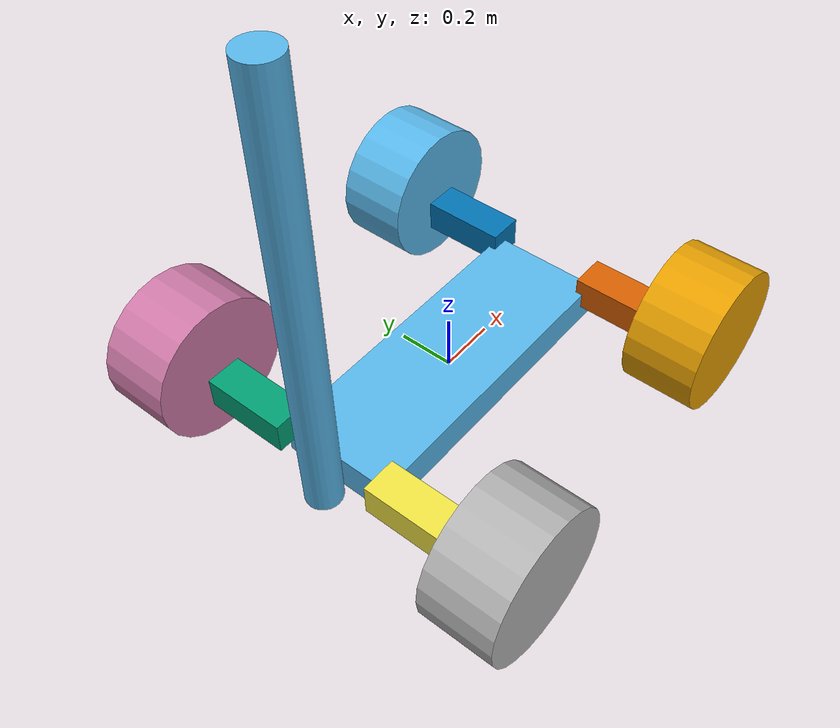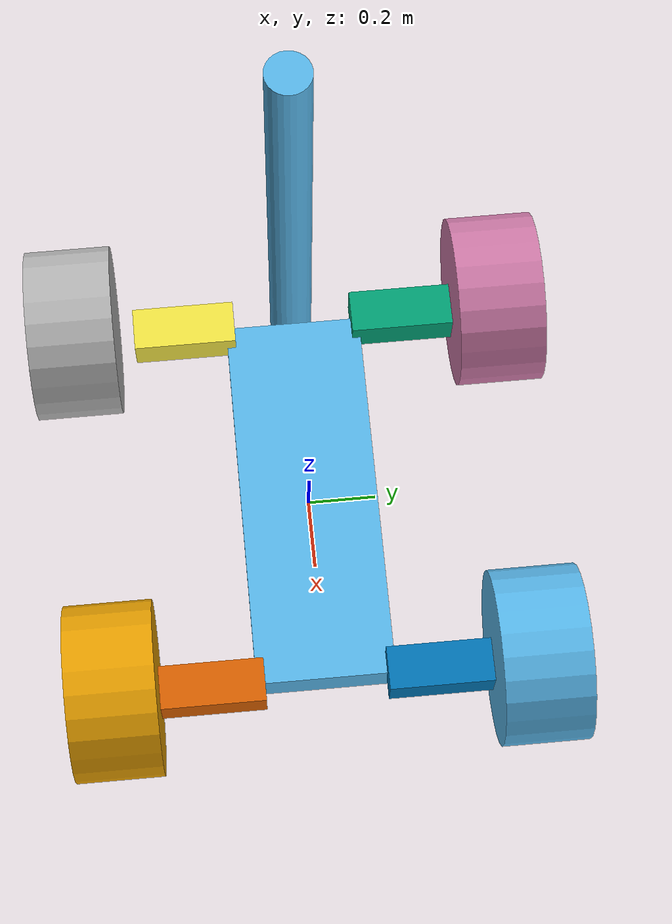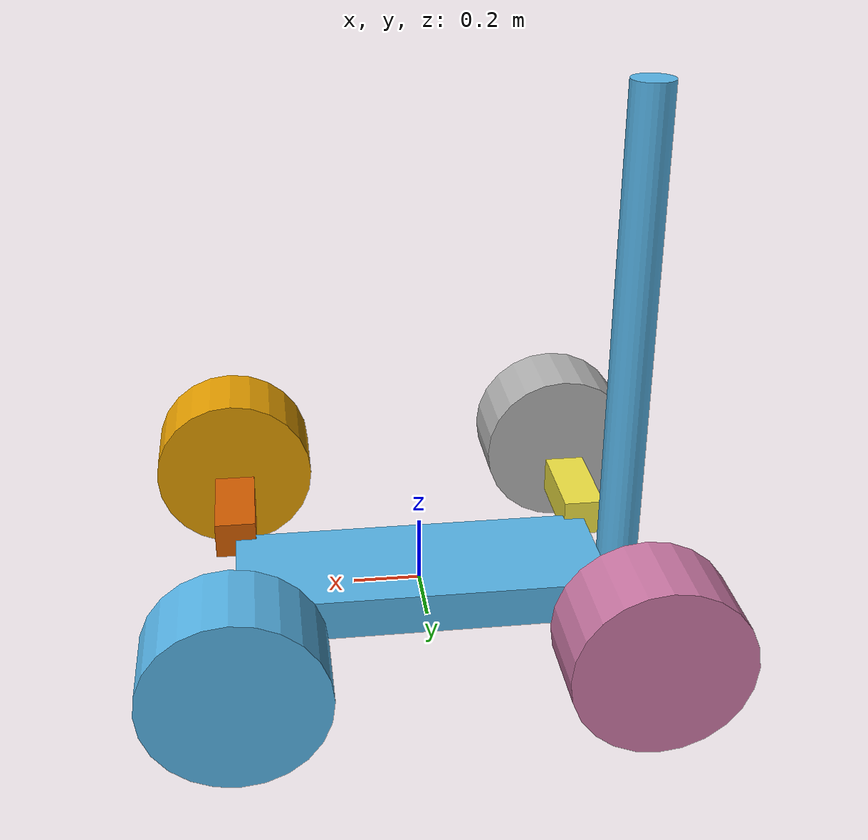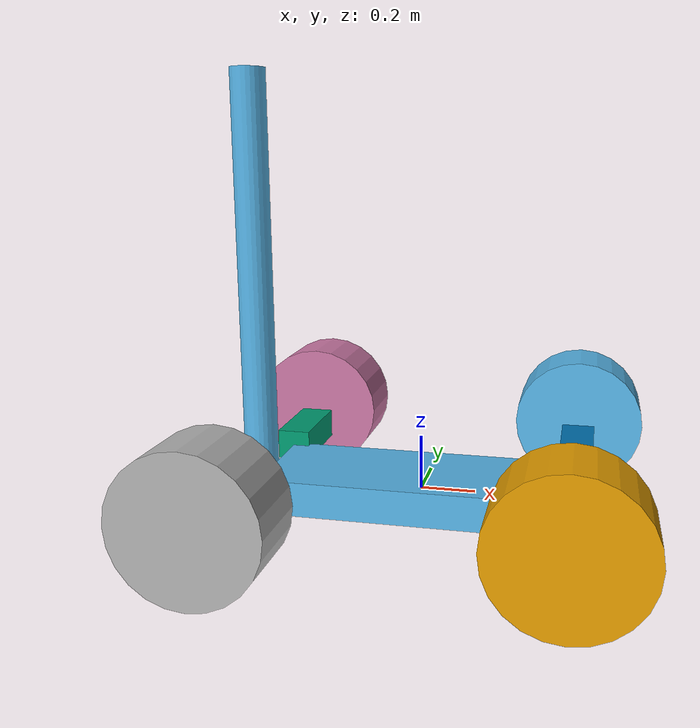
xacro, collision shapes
<?xml version='1.0'?>

<!-- choose a name space and start xacro -->
<robot name="common_models" xmlns:xacro="http://www.ros.org/wiki/xacro">

  <!-- Start by including all required xacro files which hold the macros -->
  <xacro:include filename="$(find sim_world)/models/common_models/common_models.gazebo" />
  <xacro:include filename="$(find sim_world)/models/common_models/materials.xacro" />
  <xacro:include filename="$(find sim_world)/models/common_models/macros.xacro"    />
  <xacro:include filename="$(find sim_world)/models/common_models/parameter.xacro" />

 <!-- Create a dummy link as base link -->
  <link name='base_link'>
    <pose>0 0 0 0 0 0</pose>
  </link>
  <joint type="fixed" name="base_link_to_chassis">
    <child link="chassis_link"/>
    <parent link="base_link"/>
  </joint>

  <!-- Define the chassis of the differential drive robot, which is our base -->
  <link name='chassis_link'>
    <pose>0 0 0 0 0 0</pose>
    <!-- Define inertial system for the chassis -->
    <inertial>
      <mass value="${m_chassis}"/>
      <xacro:box_inertia m="${m_chassis}" x="${x_chassis}" y="${y_chassis}" z="${z_chassis}"/>
    </inertial>
    <!-- Define collision sorrounding box -->
    <collision name='collision'>
      <origin xyz="0 0 0" rpy=" 0 0 0"/>
      <geometry>
        <box size="${x_chassis} ${y_chassis} ${z_chassis}"/>
      </geometry>
    </collision>
    <!-- Define visualization structure -->
    <visual name='base_link_visual'>
	  <origin xyz="0 0 0" rpy=" 0 0 0"/>
      <geometry>
        <mesh filename="package://sim_world/meshes/chassis-w-baseplate.dae"/>
      </geometry>
    </visual>

    <!-- Add the caster wheel! Here we simply assume complete slippage, thus we do not require that it rotates! -->

    <!-- Add antenna to the rover -->
    <collision name="antenna">
      <origin xyz="${-x_chassis/2-r_antenna} 0 ${l_antenna/2-z_chassis/2}" rpy="0 0 0"/>
      <geometry>
        <cylinder radius="${r_antenna}" length="${l_antenna}"/>
      </geometry>
    </collision>

    <visual name="antenna_visual">
      <origin xyz="${-x_chassis/2-r_antenna} 0 ${l_antenna/2-z_chassis/2}" rpy="0 0 0"/>
      <geometry>
        <cylinder radius="${r_antenna}" length="${l_antenna}"/>
      </geometry>
    </visual>

  </link>

  <!-- Add legs for the robot -->
  <link name="leg_rl">
    <inertial>
      <mass value="${m_leg}"/>
      <xacro:box_inertia m="${m_leg}" x="${l_leg}" y="${w_leg}" z="${h_leg}"/>
    </inertial>
    <collision name="collision">
      <origin xyz="0 0 0" rpy="0 0 ${pi/2}"/>
      <geometry>
        <box size="${l_leg} ${w_leg} ${h_leg}"/>
      </geometry>
    </collision>
    <visual name="leg_rl_visual">
      <origin xyz="0 0 0" rpy="0 0 ${pi/2}"/>
      <geometry>
        <mesh filename="package://sim_world/meshes/tr_leg.dae"/>
      </geometry>
    </visual>
  </link>

  <link name="leg_rr">
    <inertial>
      <mass value="${m_leg}"/>
      <xacro:box_inertia m="${m_leg}" x="${l_leg}" y="${w_leg}" z="${h_leg}"/>
    </inertial>
    <collision name="collision">
      <origin xyz="0 0 0" rpy="0 0 ${pi/2}"/>
      <geometry>
        <box size="${l_leg} ${w_leg} ${h_leg}"/>
      </geometry>
    </collision>
    <visual name="leg_rr_visual">
      <origin xyz="0 0 0" rpy="0 0 ${pi/2}"/>
      <geometry>
        <mesh filename="package://sim_world/meshes/tr_leg.dae"/>
      </geometry>
    </visual>
  </link>

  <link name="leg_fl">
    <inertial>
      <mass value="${m_leg}"/>
      <xacro:box_inertia m="${m_leg}" x="${l_leg}" y="${w_leg}" z="${h_leg}"/>
    </inertial>
    <collision name="collision">
      <origin xyz="0 0 0" rpy="0 0 ${pi/2}"/>
      <geometry>
        <box size="${l_leg} ${w_leg} ${h_leg}"/>
      </geometry>
    </collision>
    <visual name="leg_fl_visual">
      <origin xyz="0 0 0" rpy="0 0 ${pi/2}"/>
      <geometry>
        <mesh filename="package://sim_world/meshes/Control_armsFL.dae"/>
      </geometry>
    </visual>
  </link>

  <link name="leg_fr">
    <inertial>
      <mass value="${m_leg}"/>
      <xacro:box_inertia m="${m_leg}" x="${l_leg}" y="${w_leg}" z="${h_leg}"/>
    </inertial>
    <collision name="collision">
      <origin xyz="0 0 0" rpy="0 0 ${pi/2}"/>
      <geometry>
        <box size="${l_leg} ${w_leg} ${h_leg}"/>
      </geometry>
    </collision>
    <visual name="leg_fr_visual">
      <origin xyz="0 0 0" rpy="0 0 ${pi/2}"/>
      <geometry>
        <mesh filename="package://sim_world/meshes/Control_armsFRv2.dae"/>
      </geometry>
    </visual>
  </link>

  <!-- Add the wheels for the robot -->
  <link name="wheel_rl">
    <collision name="collision">
      <origin xyz="0 0 0" rpy="0 ${pi/2} ${pi/2}"/>
      <geometry>
        <cylinder radius="${r_wheel}" length="${h_wheel}"/>
      </geometry>
      <surface>
        <friction>
          <ode>
            <mu>1.0</mu>
            <mu2>1.0</mu2>
            <slip1>0.0</slip1>
            <slip2>0.0</slip2>
          </ode>
        </friction>
      </surface>
    </collision>
    <visual name="wheel_rl_visual">
      <origin xyz="0 0 0" rpy="0 ${pi/2} ${pi/2}"/>
      <geometry>
        <mesh filename="package://sim_world/meshes/tr_wheel_left.dae"/>
      </geometry>
    </visual>
    <inertial>
      <origin xyz="0 0 0" rpy="0 ${pi/2} ${pi/2}"/>
      <mass value="${m_wheel}"/>
      <cylinder_inertia m="${m_wheel}" r="${r_wheel}" h="${h_wheel}"/>
      <xacro:cylinder_inertia m="${m_wheel}" r="${r_wheel}" h="${h_wheel}"/>
    </inertial>
  </link>

  <link name="wheel_rr">
    <collision name="collision">
      <origin xyz="0 0 0" rpy="0 ${pi/2} ${pi/2}"/>
      <geometry>
        <cylinder radius="${r_wheel}" length="${h_wheel}"/>
      </geometry>
      <surface>
        <friction>
          <ode>
            <mu>1.0</mu>
            <mu2>1.0</mu2>
            <slip1>0.0</slip1>
            <slip2>0.0</slip2>
          </ode>
        </friction>
      </surface>
    </collision>
    <visual name="wheel_rr_visual">
      <origin xyz="0 0 0" rpy="0 ${pi/2} ${pi/2}"/>
      <geometry>
        <mesh filename="package://sim_world/meshes/tr_wheel_right.dae"/>
      </geometry>
    </visual>
    <inertial>
      <origin xyz="0 0 0" rpy="0 ${pi/2} ${pi/2}"/>
      <mass value="${m_wheel}"/>
      <cylinder_inertia m="${m_wheel}" r="${r_wheel}" h="${h_wheel}"/>
      <xacro:cylinder_inertia m="${m_wheel}" r="${r_wheel}" h="${h_wheel}"/>
    </inertial>
  </link>

  <link name="wheel_fr">
    <collision name="collision">
      <origin xyz="0 0 0" rpy="0 ${pi/2} ${pi/2}"/>
      <geometry>
        <cylinder radius="${r_wheel}" length="${h_wheel}"/>
      </geometry>
      <surface>
        <friction>
          <ode>
            <mu>1.0</mu>
            <mu2>1.0</mu2>
            <slip1>0.0</slip1>
            <slip2>0.0</slip2>
          </ode>
        </friction>
      </surface>
    </collision>
    <visual name="wheel_fr_visual">
      <origin xyz="0 0 0" rpy="0 ${pi/2} ${pi/2}"/>
      <geometry>
        <mesh filename="package://sim_world/meshes/tr_wheel_right.dae"/>
      </geometry>
    </visual>
    <inertial>
      <origin xyz="0 0 0" rpy="0 ${pi/2} ${pi/2}"/>
      <mass value="${m_wheel}"/>
      <cylinder_inertia m="${m_wheel}" r="${r_wheel}" h="${h_wheel}"/>
      <xacro:cylinder_inertia m="${m_wheel}" r="${r_wheel}" h="${h_wheel}"/>
    </inertial>
  </link>

  <link name="wheel_fl">
    <collision name="collision">
      <origin xyz="0 0 0" rpy="0 ${pi/2} ${pi/2}"/>
      <geometry>
        <cylinder radius="${r_wheel}" length="${h_wheel}"/>
      </geometry>
      <surface>
        <friction>
          <ode>
            <mu>1.0</mu>
            <mu2>1.0</mu2>
            <slip1>0.0</slip1>
            <slip2>0.0</slip2>
          </ode>
        </friction>
      </surface>
    </collision>
    <visual name="wheel_fl_visual">
      <origin xyz="0 0 0" rpy="0 ${pi/2} ${pi/2}"/>
      <geometry>
        <mesh filename="package://sim_world/meshes/tr_wheel_left.dae"/>
      </geometry>
    </visual>
    <inertial>
      <origin xyz="0 0 0" rpy="0 ${pi/2} ${pi/2}"/>
      <mass value="${m_wheel}"/>
      <cylinder_inertia m="${m_wheel}" r="${r_wheel}" h="${h_wheel}"/>
      <xacro:cylinder_inertia m="${m_wheel}" r="${r_wheel}" h="${h_wheel}"/>
    </inertial>
  </link>

  <!-- Set joints for the wheels which can be controlled over ROS -->
  <!-- it is continuous since it is a wheel-->
  <joint type="continuous" name="leg_rl_joint_wheel_rl">
    <origin xyz="0 ${l_leg/2+h_wheel/2} ${r_wheel/2-z_chassis/2}" rpy="0 0 0"/>
    <child link="wheel_rl"/>
    <parent link="leg_rl"/>
    <axis xyz="0 1 0" rpy="0 0 0"/>
    <!-- velocity here is the max allowed velocity not the acutal velocity-->
    <limit effort="100" velocity="100"/>
    <joint_properties damping="0.0" friction="0.0"/>
  </joint>
  <joint type="continuous" name="leg_rr_joint_wheel_rr">
    <origin xyz="0 ${-y_chassis/2-h_wheel/2} ${r_wheel/2-z_chassis/2}" rpy="0 0 0"/>
    <child link="wheel_rr"/>
    <parent link="leg_rr"/>
    <axis xyz="0 1 0" rpy="0 0 0"/>
    <limit effort="100" velocity="100"/>
    <joint_properties damping="0.0" friction="0.0"/>
  </joint>
  <joint type="continuous" name="leg_fr_joint_wheel_fr">
    <origin xyz="0 ${-l_leg/2-h_wheel/2} ${r_wheel/2-z_chassis/2}" rpy="0 0 0"/>
    <child link="wheel_fr"/>
    <parent link="leg_fr"/>
    <axis xyz="0 1 0" rpy="0 0 0"/>
    <limit effort="100" velocity="100"/>
    <joint_properties damping="0.0" friction="0.0"/>
  </joint>
  <joint type="continuous" name="leg_fl_joint_wheel_fl">
    <origin xyz="0 ${l_leg/2+h_wheel/2} ${r_wheel/2-z_chassis/2}" rpy="0 0 0"/>
    <child link="wheel_fl"/>
    <parent link="leg_fl"/>
    <axis xyz="0 1 0" rpy="0 0 0"/>
    <limit effort="100" velocity="100"/>
    <joint_properties damping="0.0" friction="0.0"/>
  </joint>

   <joint type="revolute" name="chassis_link_joint_leg_rl">
    <origin xyz="${-wheel_dist_center} ${y_chassis/2+h_wheel/2} ${r_wheel/2-z_chassis/2}" rpy="0 0 0"/>
    <child link="leg_rl"/>
    <parent link="chassis_link"/>
    <axis xyz="0 1 0" rpy="0 0 0"/>
    <limit effort="100" velocity="100"/>
    <joint_properties damping="0.0" friction="0.0"/>
  </joint>
  <joint type="revolute" name="chassis_link_joint_leg_rr">
    <origin xyz="${-wheel_dist_center} ${-y_chassis/2-h_wheel/2} ${r_wheel/2-z_chassis/2}" rpy="0 0 0"/>
    <child link="leg_rr"/>
    <parent link="chassis_link"/>
    <axis xyz="0 1 0" rpy="0 0 0"/>
    <limit effort="100" velocity="100"/>
    <joint_properties damping="0.0" friction="0.0"/>
  </joint>
  <joint type="revolute" name="chassis_link_joint_leg_fl">
    <origin xyz="${wheel_dist_center} ${y_chassis/2+h_wheel/2} ${r_wheel/2-z_chassis/2}" rpy="0 0 0"/>
    <child link="leg_fl"/>
    <parent link="chassis_link"/>
    <axis xyz="0 1 0" rpy="0 0 0"/>
    <limit effort="100" velocity="100"/>
    <joint_properties damping="0.0" friction="0.0"/>
  </joint>
  <joint type="revolute" name="chassis_link_joint_leg_fr">
    <origin xyz="${wheel_dist_center} ${-y_chassis/2-h_wheel/2} ${r_wheel/2-z_chassis/2}" rpy="0 0 0"/>
    <child link="leg_fr"/>
    <parent link="chassis_link"/>
    <axis xyz="0 1 0" rpy="0 0 0"/>
    <limit effort="100" velocity="100"/>
    <joint_properties damping="0.0" friction="0.0"/>
  </joint>
</robot>

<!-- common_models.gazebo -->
<robot xmlns:xacro="http://www.ros.org/wiki/xacro">
  <xacro:include filename="$(find sim_world)/models/common_models/parameter.xacro" />

  <!-- TODO: Add same update rates over parameter setting and define all parameters in config -->
  <!-- Differential Drive controller from Gazebo, TODO: Add noise by adapting the plugin -->
  <gazebo>
    <plugin name="differential_drive_controller" filename="libgazebo_ros_diff_drive.so">
      <alwaysOn>true</alwaysOn>
      <!-- the buad rate is 20 hz-->
      <updateRate>20</updateRate>
      <leftJoint>leg_rl_joint_wheel_rl</leftJoint>
      <rightJoint>leg_rr_joint_wheel_rr</rightJoint>
      <wheelSeparation>${h_wheel+l_leg*2+y_chassis}</wheelSeparation>
      <wheelDiameter>${r_wheel*2}</wheelDiameter>
      <wheelTorque>${torque_wheel}</wheelTorque>
      <commandTopic>/cmd_vel</commandTopic>
      <odometryTopic>odom</odometryTopic>
      <odometryFrame>odom_link</odometryFrame>
      <robotBaseFrame>base_link</robotBaseFrame>
      <legacyMode>false</legacyMode>
    </plugin>
  </gazebo>

  <!-- Paint the robot -->
  <gazebo reference="base_link">
    <material>Gazebo/Orange</material>
  </gazebo>
</robot>

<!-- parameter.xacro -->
<robot xmlns:xacro="http://www.ros.org/wiki/xacro">

  <!-- Define parameter for the differential drive robot -->
  <!-- Parameter for the chassis, size [m] and mass [kg] -->
  <xacro:property name="x_chassis" value="1.1176" />
  <xacro:property name="y_chassis" value="0.4064" />
  <xacro:property name="z_chassis" value="0.127" />
  <xacro:property name="m_chassis" value="10.0" />

  <!-- Parameter for the wheels, radius [m], height [m], mass [kg], torque [Nm], wheelbase [m] -->
  <xacro:property name="r_wheel" value="0.254"/>
  <xacro:property name="h_wheel" value="0.254" />
  <xacro:property name="m_wheel" value="3.0" />
  <xacro:property name="torque_wheel" value="10" />
  <xacro:property name="L_wheel" value="0.1788" />
  <xacro:property name="wheel_dist_center" value="0.5588" />

  <!-- Parameter for the legs, length [m], width [m], height [m], mass [kg]-->
  <xacro:property name="l_leg" value="0.3048" />
  <xacro:property name="w_leg" value="0.1270" />
  <xacro:property name="h_leg" value="0.1143" />
  <xacro:property name="m_leg" value="2.0" />

  <!-- Parameter for the antenna, radius [m], length [m] -->
  <xacro:property name="r_antenna" value="0.0635" />
  <xacro:property name="l_antenna" value="1.5748" />

</robot>
